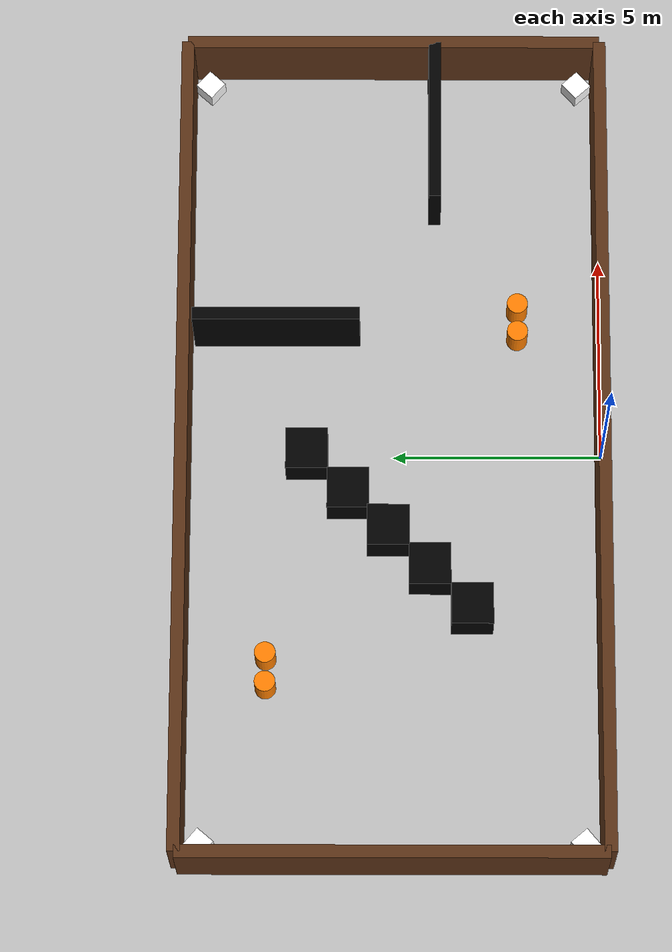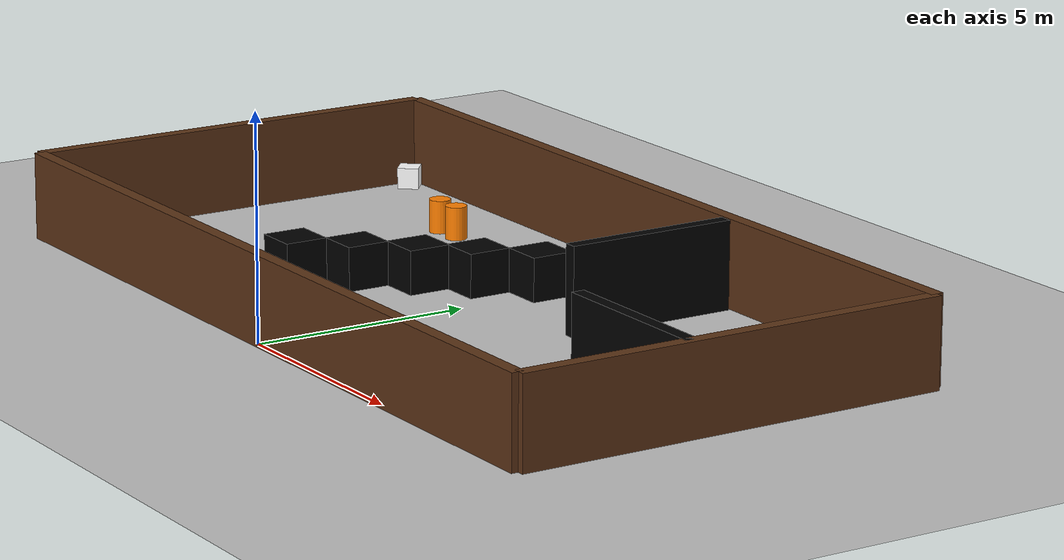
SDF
<sdf version='1.9'>
  <world name='empty_world'>
    <plugin filename="ignition-gazebo-physics-system" name="ignition::gazebo::systems::Physics"/>
    <plugin filename="ignition-gazebo-user-commands-system" name="ignition::gazebo::systems::UserCommands"/>
    <plugin filename="ignition-gazebo-scene-broadcaster-system" name="ignition::gazebo::systems::SceneBroadcaster"/>
    <plugin filename="ignition-gazebo-contact-system" name="ignition::gazebo::systems::Contact"/>
    <plugin filename="ignition-gazebo-sensors-system" name="ignition::gazebo::systems::Sensors">
      <render_engine>ogre2</render_engine>
    </plugin>
    <gravity>0 0 -9.8</gravity>
    <magnetic_field>6e-06 2.3e-05 -4.2e-05</magnetic_field>
    <atmosphere type='adiabatic'/>
    <physics type='ode'>
      <max_step_size>0.005</max_step_size>
      <real_time_factor>1</real_time_factor>
      <real_time_update_rate>1000</real_time_update_rate>
    </physics>
    <scene>
      <ambient>0.4 0.4 0.4 1</ambient>
      <background>0.7 0.7 0.7 1</background>
      <shadows>true</shadows>
    </scene>
    <model name='ground_plane'>
      <static>true</static>
      <link name='link'>
        <collision name='collision'>
          <geometry>
            <plane>
              <normal>0 0 1</normal>
              <size>100 100</size>
            </plane>
          </geometry>
          <surface>
            <friction>
              <ode/>
            </friction>
            <bounce/>
            <contact/>
          </surface>
        </collision>
        <visual name='visual'>
          <geometry>
            <plane>
              <normal>0 0 1</normal>
              <size>100 100</size>
            </plane>
          </geometry>
          <material>
            <ambient>0.0 0.0 0.8 1</ambient>
            <diffuse>0.75, 0.75, 0.75 1</diffuse>
            <specular>0.8 0.8 0.8 1</specular>
          </material>
        </visual>
        <pose>0 0 0 0 -0 0</pose>
        <inertial>
          <pose>0 0 0 0 -0 0</pose>
          <mass>1</mass>
          <inertia>
            <ixx>1</ixx>
            <ixy>0</ixy>
            <ixz>0</ixz>
            <iyy>1</iyy>
            <iyz>0</iyz>
            <izz>1</izz>
          </inertia>
        </inertial>
        <enable_wind>false</enable_wind>
      </link>
      <pose>0 0 0 0 -0 0</pose>
      <self_collide>false</self_collide>
    </model>

    <model name='wall_north'>
      <static>true</static>
      <pose>0 10 1 0 -0 0</pose>
      <link name='link'>
        <visual name='visual'>
          <geometry>
            <box>
              <size>20 0.3 2</size>
            </box>
          </geometry>
          <material>
            <ambient>0.0 0.0 0.8 1</ambient>
            <diffuse>0.36 0.2 0.09 1</diffuse>
            <specular>0.1 0.1 0.1 1</specular>
          </material>
        </visual>
        <collision name='collision'>
          <geometry>
            <box>
              <size>20 0.3 2</size>
            </box>
          </geometry>
          <surface>
            <friction>
              <ode/>
            </friction>
            <bounce/>
            <contact/>
          </surface>
        </collision>
        <pose>0 0 0 0 -0 0</pose>
        <inertial>
          <pose>0 0 0 0 -0 0</pose>
          <mass>1</mass>
          <inertia>
            <ixx>1</ixx>
            <ixy>0</ixy>
            <ixz>0</ixz>
            <iyy>1</iyy>
            <iyz>0</iyz>
            <izz>1</izz>
          </inertia>
        </inertial>
        <enable_wind>false</enable_wind>
      </link>
      <self_collide>false</self_collide>
    </model>

    <model name='wall_east'>
      <static>true</static>
      <pose>10 5 1 0 -0 0</pose>
      <link name='link'>
        <visual name='visual'>
          <geometry>
            <box>
              <size>0.3 10 2</size>
            </box>
          </geometry>
          <material>
            <ambient>0.0 0.0 0.8 1</ambient>
            <diffuse>0.36 0.2 0.09 1</diffuse>
            <specular>0.1 0.1 0.1 1</specular>
          </material>
        </visual>
        <collision name='collision'>
          <geometry>
            <box>
              <size>0.3 20 2</size>
            </box>
          </geometry>
          <surface>
            <friction>
              <ode/>
            </friction>
            <bounce/>
            <contact/>
          </surface>
        </collision>
        <pose>0 0 0 0 -0 0</pose>
        <inertial>
          <pose>0 0 0 0 -0 0</pose>
          <mass>1</mass>
          <inertia>
            <ixx>1</ixx>
            <ixy>0</ixy>
            <ixz>0</ixz>
            <iyy>1</iyy>
            <iyz>0</iyz>
            <izz>1</izz>
          </inertia>
        </inertial>
        <enable_wind>false</enable_wind>
      </link>
      <self_collide>false</self_collide>
    </model>
    <model name='wall_west'>
      <static>true</static>
      <pose>-10 5 1 0 -0 0</pose>
      <link name='link'>
        <visual name='visual'>
          <geometry>
            <box>
              <size>0.3 10 2</size>
            </box>
          </geometry>
          <material>
            <ambient>0.0 0.0 0.8 1</ambient>
            <diffuse>0.36 0.2 0.09 1</diffuse>
            <specular>0.1 0.1 0.1 1</specular>
          </material>
        </visual>
        <collision name='collision'>
          <geometry>
            <box>
              <size>0.3 20 2</size>
            </box>
          </geometry>
          <surface>
            <friction>
              <ode/>
            </friction>
            <bounce/>
            <contact/>
          </surface>
        </collision>
        <pose>0 0 0 0 -0 0</pose>
        <inertial>
          <pose>0 0 0 0 -0 0</pose>
          <mass>1</mass>
          <inertia>
            <ixx>1</ixx>
            <ixy>0</ixy>
            <ixz>0</ixz>
            <iyy>1</iyy>
            <iyz>0</iyz>
            <izz>1</izz>
          </inertia>
        </inertial>
        <enable_wind>false</enable_wind>
      </link>
      <self_collide>false</self_collide>
    </model>
    <model name='inner_wall_1'>
      <static>true</static>
      <pose>0 0 1 0 -0 0</pose>
      <link name='link'>
        <visual name='visual'>
          <geometry>
            <box>
              <size>20 0.3 2</size>
            </box>
          </geometry>
          <material>
            <ambient>0.0 0.0 0.8 1</ambient>
            <diffuse>0.36 0.2 0.09 1</diffuse>
            <specular>0.1 0.1 0.1 1</specular>
          </material>
        </visual>
        <collision name='collision'>
          <geometry>
            <box>
              <size>8 0.3 2</size>
            </box>
          </geometry>
          <surface>
            <friction>
              <ode/>
            </friction>
            <bounce/>
            <contact/>
          </surface>
        </collision>
        <pose>0 0 0 0 -0 0</pose>
        <inertial>
          <pose>0 0 0 0 -0 0</pose>
          <mass>1</mass>
          <inertia>
            <ixx>1</ixx>
            <ixy>0</ixy>
            <ixz>0</ixz>
            <iyy>1</iyy>
            <iyz>0</iyz>
            <izz>1</izz>
          </inertia>
        </inertial>
        <enable_wind>false</enable_wind>
      </link>
      <self_collide>false</self_collide>
    </model>

    <model name='cylinder'>
      <static>true</static>
      <pose>3 2 -0 0 -0 -0</pose>
      <link name='cylinder_link'>
        <inertial>
          <inertia>
            <ixx>0.16666</ixx>
            <ixy>0</ixy>
            <ixz>0</ixz>
            <iyy>0.16666</iyy>
            <iyz>0</iyz>
            <izz>0.16666</izz>
          </inertia>
          <mass>1</mass>
          <pose>0 0 0 0 -0 0</pose>
        </inertial>
        <collision name='cylinder_collision'>
          <geometry>
            <cylinder>
              <radius>0.25</radius>
              <length>1.5</length>
            </cylinder>
          </geometry>
          <surface>
            <friction>
              <ode/>
            </friction>
            <bounce/>
            <contact/>
          </surface>
        </collision>
        <visual name='cylinder_visual'>
          <geometry>
            <cylinder>
              <radius>0.25</radius>
              <length>1.5</length>
            </cylinder>
          </geometry>
          <material>
            <ambient>1.0 0.5 0.0 1</ambient>
            <diffuse>1.0 0.5 0.0 1</diffuse>
            <specular>0.2 0.2 0.2 1</specular>
          </material>
        </visual>
        <pose>0 0 0 0 -0 0</pose>
        <enable_wind>false</enable_wind>
      </link>
      <static>true</static>
      <self_collide>false</self_collide>
    </model>

    <model name='cylinder1'>
      <static>true</static>
      <pose>3.7 2 -0 0 0 0</pose>
      <link name='cylinder_link1'>
        <inertial>
          <inertia>
            <ixx>0.16666</ixx>
            <ixy>0</ixy>
            <ixz>0</ixz>
            <iyy>0.16666</iyy>
            <iyz>0</iyz>
            <izz>0.16666</izz>
          </inertia>
          <mass>1</mass>
          <pose>0 0 0 0 -0 0</pose>
        </inertial>
        <collision name='cylinder_collision'>
          <geometry>
            <cylinder>
              <radius>0.25</radius>
              <length>1.5</length>
            </cylinder>
          </geometry>
          <surface>
            <friction>
              <ode/>
            </friction>
            <bounce/>
            <contact/>
          </surface>
        </collision>
        <visual name='cylinder_visual'>
          <geometry>
            <cylinder>
              <radius>0.25</radius>
              <length>1.5</length>
            </cylinder>
          </geometry>
          <material>
            <ambient>1.0 0.5 0.0 1</ambient>
            <diffuse>1.0 0.5 0.0 1</diffuse>
            <specular>0.2 0.2 0.2 1</specular>
          </material>
        </visual>
        <pose>0 0 0 0 -0 0</pose>
        <enable_wind>false</enable_wind>
      </link>
      <static>true</static>
      <self_collide>false</self_collide>
    </model>

    <model name='cylinder2'>
      <static>true</static>
      <pose>-5 8 -0 0 0 0</pose>
      <link name='cylinder_link2'>
        <inertial>
          <inertia>
            <ixx>0.16666</ixx>
            <ixy>0</ixy>
            <ixz>0</ixz>
            <iyy>0.16666</iyy>
            <iyz>0</iyz>
            <izz>0.16666</izz>
          </inertia>
          <mass>1</mass>
          <pose>0 0 0 0 -0 0</pose>
        </inertial>
        <collision name='cylinder_collision'>
          <geometry>
            <cylinder>
              <radius>0.25</radius>
              <length>1.5</length>
            </cylinder>
          </geometry>
          <surface>
            <friction>
              <ode/>
            </friction>
            <bounce/>
            <contact/>
          </surface>
        </collision>
        <visual name='cylinder_visual'>
          <geometry>
            <cylinder>
              <radius>0.25</radius>
              <length>1.5</length>
            </cylinder>
          </geometry>
          <material>
            <ambient>1.0 0.5 0.0 1</ambient>
            <diffuse>1.0 0.5 0.0 1</diffuse>
            <specular>0.2 0.2 0.2 1</specular>
          </material>
        </visual>
        <pose>0 0 0 0 -0 0</pose>
        <enable_wind>false</enable_wind>
      </link>
      <static>true</static>
      <self_collide>false</self_collide>
    </model>

    <model name='cylinder3'>
      <static>true</static>
      <pose>-5.7 8 -0 0 0 0</pose>
      <link name='cylinder_link3'>
        <inertial>
          <inertia>
            <ixx>0.16666</ixx>
            <ixy>0</ixy>
            <ixz>0</ixz>
            <iyy>0.16666</iyy>
            <iyz>0</iyz>
            <izz>0.16666</izz>
          </inertia>
          <mass>1</mass>
          <pose>0 0 0 0 -0 0</pose>
        </inertial>
        <collision name='cylinder_collision'>
          <geometry>
            <cylinder>
              <radius>0.25</radius>
              <length>1.5</length>
            </cylinder>
          </geometry>
          <surface>
            <friction>
              <ode/>
            </friction>
            <bounce/>
            <contact/>
          </surface>
        </collision>
        <visual name='cylinder_visual'>
          <geometry>
            <cylinder>
              <radius>0.25</radius>
              <length>1.5</length>
            </cylinder>
          </geometry>
          <material>
            <ambient>1.0 0.5 0.0 1</ambient>
            <diffuse>1.0 0.5 0.0 1</diffuse>
            <specular>0.2 0.2 0.2 1</specular>
          </material>
        </visual>
        <pose>0 0 0 0 -0 0</pose>
        <enable_wind>false</enable_wind>
      </link>
      <static>true</static>
      <self_collide>false</self_collide>
    </model>

    <model name='inner_wall_2'>
      <static>true</static>
      <pose>3 7.8 1 0 -0 0</pose>
      <link name='link'>
        <visual name='visual'>
          <geometry>
            <box>
              <size>0.3 4 2</size>
            </box>
          </geometry>
          <material>
            <ambient>0.0 0.0 0.8 1</ambient>
            <diffuse>0.0 0.0 0.0 1</diffuse>
            <specular>0.1 0.1 0.1 1</specular>
          </material>
        </visual>
        <collision name='collision'>
          <geometry>
            <box>
              <size>0.3 4 2</size>
            </box>
          </geometry>
          <surface>
            <friction>
              <ode/>
            </friction>
            <bounce/>
            <contact/>
          </surface>
        </collision>
        <pose>0 0 0 0 -0 0</pose>
        <inertial>
          <pose>0 0 0 0 -0 0</pose>
          <mass>1</mass>
          <inertia>
            <ixx>1</ixx>
            <ixy>0</ixy>
            <ixz>0</ixz>
            <iyy>1</iyy>
            <iyz>0</iyz>
            <izz>1</izz>
          </inertia>
        </inertial>
        <enable_wind>false</enable_wind>
      </link>
      <self_collide>false</self_collide>
    </model>

    <model name='inner_wall_3'>
      <static>true</static>
      <pose>8 4 1 0 0 1.57</pose>
      <link name='link'>
        <visual name='visual'>
          <geometry>
            <box>
              <size>0.3 4 2</size>
            </box>
          </geometry>
          <material>
            <ambient>0.0 0.0 0.8 1</ambient>
            <diffuse>0.0 0.0 0.0 1</diffuse>
            <specular>0.1 0.1 0.1 1</specular>
          </material>
        </visual>
        <collision name='collision'>
          <geometry>
            <box>
              <size>0.3 4 2</size>
            </box>
          </geometry>
          <surface>
            <friction>
              <ode/>
            </friction>
            <bounce/>
            <contact/>
          </surface>
        </collision>
        <pose>0 0 0 0 -0 0</pose>
        <inertial>
          <pose>0 0 0 0 -0 0</pose>
          <mass>1</mass>
          <inertia>
            <ixx>1</ixx>
            <ixy>0</ixy>
            <ixz>0</ixz>
            <iyy>1</iyy>
            <iyz>0</iyz>
            <izz>1</izz>
          </inertia>
        </inertial>
        <enable_wind>false</enable_wind>
      </link>
      <self_collide>false</self_collide>
    </model>

<!-- SEZIONE ARUCO BOX-->

    <model name='aruco_box'>
      <pose>-9.5 9.5 0.25 0 0 -0.7</pose>
      <link name='box_link'>
        <inertial>
          <mass>10</mass>
          <inertia>
            <ixx>1.6599999999999999</ixx>
            <ixy>0</ixy>
            <ixz>0</ixz>
            <iyy>1.6599999999999999</iyy>
            <iyz>0</iyz>
            <izz>1.6599999999999999</izz>
          </inertia>
          <pose>0 0 0 0 -0 0</pose>
        </inertial>
        <visual name='visual'>
          <geometry>
            <box>
              <size>0.4 0.4 0.4</size>
            </box>
          </geometry>
          <material>
            <ambient>1 1 1 1</ambient>
            <diffuse>1 1 1 1</diffuse>
          </material>
        </visual>
        <collision name='collision'>
          <geometry>
            <box>
              <size>0.4 0.4 0.4</size>
            </box>
          </geometry>
          <surface>
            <friction>
              <ode/>
            </friction>
            <bounce/>
            <contact/>
          </surface>
        </collision>
        <pose>0 0 0 0 -0 0</pose>
        <enable_wind>false</enable_wind>
      </link>

      <include>
        <uri>model://aruco_marker_0</uri>
        <name>marker_0</name>
        <pose>0 0 0 0 0 0</pose>
      </include>
      <joint name='joint_0' type='fixed'>
        <parent>box_link</parent>
        <child>marker_0::link</child>
        <pose>0 0 0 0 0 -0</pose>
      </joint>

      <static>true</static>
      <self_collide>false</self_collide>
    </model>

    <model name='aruco_box_1'>
      <pose>9.5 9.5 0.25 0 0 -2.3</pose>
      <link name='box_link'>
        <inertial>
          <mass>10</mass>
          <inertia>
            <ixx>1.6599999999999999</ixx>
            <ixy>0</ixy>
            <ixz>0</ixz>
            <iyy>1.6599999999999999</iyy>
            <iyz>0</iyz>
            <izz>1.6599999999999999</izz>
          </inertia>
          <pose>0 0 0 0 -0 0</pose>
        </inertial>
        <visual name='visual'>
          <geometry>
            <box>
              <size>0.4 0.4 0.4</size>
            </box>
          </geometry>
          <material>
            <ambient>1 1 1 1</ambient>
            <diffuse>1 1 1 1</diffuse>
          </material>
        </visual>
        <collision name='collision'>
          <geometry>
            <box>
              <size>0.4 0.4 0.4</size>
            </box>
          </geometry>
          <surface>
            <friction>
              <ode/>
            </friction>
            <bounce/>
            <contact/>
          </surface>
        </collision>
        <pose>0 0 0 0 -0 0</pose>
        <enable_wind>false</enable_wind>
      </link>

      <include>
        <uri>model://aruco_marker_1</uri>
        <name>marker_1</name>
        <pose>0 0 0 0 0 0</pose>
      </include>
      <joint name='joint_1' type='fixed'>
        <parent>box_link</parent>
        <child>marker_1::link</child>
        <pose>0 0 0 0 0 -0</pose>
      </joint>

      <static>true</static>
      <self_collide>false</self_collide>
    </model>

    <model name='aruco_box_2'>
      <pose>9.5 0.5 0.25 0 0 2.3</pose>
      <link name='box_link'>
        <inertial>
          <mass>10</mass>
          <inertia>
            <ixx>1.6599999999999999</ixx>
            <ixy>0</ixy>
            <ixz>0</ixz>
            <iyy>1.6599999999999999</iyy>
            <iyz>0</iyz>
            <izz>1.6599999999999999</izz>
          </inertia>
          <pose>0 0 0 0 -0 0</pose>
        </inertial>
        <visual name='visual'>
          <geometry>
            <box>
              <size>0.4 0.4 0.4</size>
            </box>
          </geometry>
          <material>
            <ambient>1 1 1 1</ambient>
            <diffuse>1 1 1 1</diffuse>
          </material>
        </visual>
        <collision name='collision'>
          <geometry>
            <box>
              <size>0.4 0.4 0.4</size>
            </box>
          </geometry>
          <surface>
            <friction>
              <ode/>
            </friction>
            <bounce/>
            <contact/>
          </surface>
        </collision>
        <pose>0 0 0 0 -0 0</pose>
        <enable_wind>false</enable_wind>
      </link>
      <include>
        <uri>model://aruco_marker_2</uri>
        <name>marker_2</name>
        <pose>0 0 0 0 0 0</pose>
      </include>
      <joint name='joint_2' type='fixed'>
        <parent>box_link</parent>
        <child>marker_2::link</child>
        <pose>0 0 0 0 0 -0</pose>
      </joint>
      <static>true</static>
      <self_collide>false</self_collide>
    </model>

    <model name='aruco_box_3'>
      <pose>-9.5 0.5 0.25 -0 0 0.7</pose>
      <link name='box_link'>
        <inertial>
          <mass>10</mass>
          <inertia>
            <ixx>1.6599999999999999</ixx>
            <ixy>0</ixy>
            <ixz>0</ixz>
            <iyy>1.6599999999999999</iyy>
            <iyz>0</iyz>
            <izz>1.6599999999999999</izz>
          </inertia>
          <pose>0 0 0 0 -0 0</pose>
        </inertial>
        <visual name='visual'>
          <geometry>
            <box>
              <size>0.4 0.4 0.4</size>
            </box>
          </geometry>
          <material>
            <ambient>1 1 1 1</ambient>
            <diffuse>1 1 1 1</diffuse>
          </material>
        </visual>
        <collision name='collision'>
          <geometry>
            <box>
              <size>0.4 0.4 0.4</size>
            </box>
          </geometry>
          <surface>
            <friction>
              <ode/>
            </friction>
            <bounce/>
            <contact/>
          </surface>
        </collision>
        <pose>0 0 0 0 -0 0</pose>
        <enable_wind>false</enable_wind>
      </link>
      <include>
        <uri>model://aruco_marker_3</uri>
        <name>marker_3</name>
        <pose>0 0 0 0 0 0</pose>
      </include>
      <joint name='joint_3' type='fixed'>
        <parent>box_link</parent>
        <child>marker_3::link</child>
        <pose>0 0 0 0 0 -0</pose>
      </joint>
      <static>true</static>
      <self_collide>false</self_collide>
    </model>

    <model name='box'>
      <static>true</static>
      <pose>-0.04 7.06 0.5 0 0 -0</pose>
      <link name='box_link'>
        <inertial>
          <inertia>
            <ixx>0.16666</ixx>
            <ixy>0</ixy>
            <ixz>0</ixz>
            <iyy>0.16666</iyy>
            <iyz>0</iyz>
            <izz>0.16666</izz>
          </inertia>
          <mass>1</mass>
          <pose>0 0 0 0 -0 0</pose>
        </inertial>
        <collision name='box_collision'>
          <geometry>
            <box>
              <size>1 1 1</size>
            </box>
          </geometry>
          <surface>
            <friction>
              <ode/>
            </friction>
            <bounce/>
            <contact/>
          </surface>
        </collision>
        <visual name='box_visual'>
          <geometry>
            <box>
              <size>1 1 1</size>
            </box>
          </geometry>
          <material>
           <ambient>0.0 0.0 0.8 1</ambient>
            <diffuse>0.0 0.0 0.0 1</diffuse>
            <specular>0.1 0.1 0.1 1</specular>
          </material>
        </visual>
        <pose>0 0 0 0 -0 0</pose>
        <enable_wind>false</enable_wind>
      </link>
      <static>true</static>
      <self_collide>false</self_collide>
    </model>

    <model name='box_0'>
      <static>true</static>
      <pose>-1.02 6.07 0.5 0 0 -0</pose>
      <link name='box_link'>
        <inertial>
          <inertia>
            <ixx>0.16666</ixx>
            <ixy>0</ixy>
            <ixz>0</ixz>
            <iyy>0.16666</iyy>
            <iyz>0</iyz>
            <izz>0.16666</izz>
          </inertia>
          <mass>1</mass>
          <pose>0 0 0 0 -0 0</pose>
        </inertial>
        <collision name='box_collision'>
          <geometry>
            <box>
              <size>1 1 1</size>
            </box>
          </geometry>
          <surface>
            <friction>
              <ode/>
            </friction>
            <bounce/>
            <contact/>
          </surface>
        </collision>
        <visual name='box_visual'>
          <geometry>
            <box>
              <size>1 1 1</size>
            </box>
          </geometry>
          <material>
            <ambient>0.0 0.0 0.8 1</ambient>
            <diffuse>0.0 0.0 0.0 1</diffuse>
            <specular>0.1 0.1 0.1 1</specular>
          </material>
        </visual>
        <pose>0 0 0 0 -0 0</pose>
        <enable_wind>false</enable_wind>
      </link>
      <static>true</static>
      <self_collide>false</self_collide>
    </model>
    <model name='box_1'>
      <static>true</static>
      <pose>-1.94 5.11 0.5 0 0 -0</pose>
      <link name='box_link'>
        <inertial>
          <inertia>
            <ixx>0.16666</ixx>
            <ixy>0</ixy>
            <ixz>0</ixz>
            <iyy>0.16666</iyy>
            <iyz>0</iyz>
            <izz>0.16666</izz>
          </inertia>
          <mass>1</mass>
          <pose>0 0 0 0 -0 0</pose>
        </inertial>
        <collision name='box_collision'>
          <geometry>
            <box>
              <size>1 1 1</size>
            </box>
          </geometry>
          <surface>
            <friction>
              <ode/>
            </friction>
            <bounce/>
            <contact/>
          </surface>
        </collision>
        <visual name='box_visual'>
          <geometry>
            <box>
              <size>1 1 1</size>
            </box>
          </geometry>
          <material>
            <ambient>0.0 0.0 0.8 1</ambient>
            <diffuse>0.0 0.0 0.0 1</diffuse>
            <specular>0.1 0.1 0.1 1</specular>
          </material>
        </visual>
        <pose>0 0 0 0 -0 0</pose>
        <enable_wind>false</enable_wind>
      </link>
      <static>true</static>
      <self_collide>false</self_collide>
    </model>
    <model name='box_2'>
      <static>true</static>
      <pose>-2.89 4.12 0.5 0 -0 0</pose>
      <link name='box_link'>
        <inertial>
          <inertia>
            <ixx>0.16666</ixx>
            <ixy>0</ixy>
            <ixz>0</ixz>
            <iyy>0.16666</iyy>
            <iyz>0</iyz>
            <izz>0.16666</izz>
          </inertia>
          <mass>1</mass>
          <pose>0 0 0 0 -0 0</pose>
        </inertial>
        <collision name='box_collision'>
          <geometry>
            <box>
              <size>1 1 1</size>
            </box>
          </geometry>
          <surface>
            <friction>
              <ode/>
            </friction>
            <bounce/>
            <contact/>
          </surface>
        </collision>
        <visual name='box_visual'>
          <geometry>
            <box>
              <size>1 1 1</size>
            </box>
          </geometry>
          <material>
            <ambient>0.0 0.0 0.8 1</ambient>
            <diffuse>0.0 0.0 0.0 1</diffuse>
            <specular>0.1 0.1 0.1 1</specular>
          </material>
        </visual>
        <pose>0 0 0 0 -0 0</pose>
        <enable_wind>false</enable_wind>
      </link>
      <static>true</static>
      <self_collide>false</self_collide>
    </model>
    <model name='box_3'>
      <static>true</static>
      <pose>-3.86 3.12 0.5 0 0 -0</pose>
      <link name='box_link'>
        <inertial>
          <inertia>
            <ixx>0.16666</ixx>
            <ixy>0</ixy>
            <ixz>0</ixz>
            <iyy>0.16666</iyy>
            <iyz>0</iyz>
            <izz>0.16666</izz>
          </inertia>
          <mass>1</mass>
          <pose>0 0 0 0 -0 0</pose>
        </inertial>
        <collision name='box_collision'>
          <geometry>
            <box>
              <size>1 1 1</size>
            </box>
          </geometry>
          <surface>
            <friction>
              <ode/>
            </friction>
            <bounce/>
            <contact/>
          </surface>
        </collision>
        <visual name='box_visual'>
          <geometry>
            <box>
              <size>1 1 1</size>
            </box>
          </geometry>
          <material>
            <ambient>0.0 0.0 0.8 1</ambient>
            <diffuse>0.0 0.0 0.0 1</diffuse>
            <specular>0.1 0.1 0.1 1</specular>
          </material>
        </visual>
        <pose>0 0 0 0 -0 0</pose>
        <enable_wind>false</enable_wind>
      </link>
      <static>true</static>
      <self_collide>false</self_collide>
    </model>
    <light name='sun' type='directional'>
      <pose>0 0 10 0 -0 0</pose>
      <cast_shadows>false</cast_shadows>
      <intensity>1</intensity>
      <direction>-0.5 0.1 -0.9</direction>
      <diffuse>0.8 0.8 0.8 1</diffuse>
      <specular>0.2 0.2 0.2 1</specular>
      <attenuation>
        <range>10</range>
        <linear>1</linear>
        <constant>1</constant>
        <quadratic>0</quadratic>
      </attenuation>
      <spot>
        <inner_angle>0</inner_angle>
        <outer_angle>0</outer_angle>
        <falloff>0</falloff>
      </spot>
    </light>
  </world>
</sdf>

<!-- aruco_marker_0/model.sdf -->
<sdf version="1.6">
  <model name="aruco_marker_0">
    <static>true</static>
    <link name="link">
      <visual name="visual">
        <geometry>
          <box>
            <size>0.5 0.5 0.5</size> </box>
        </geometry>
        <material>
          <diffuse>1.0 1.0 1.0 1.0</diffuse> <pbr>
            <metal>
              <albedo_map>../textures/marker_0.png</albedo_map>
            </metal>
          </pbr>
        </material>
      </visual>
      <collision name="collision">
        <geometry>
          <box>
            <size>0.5 0.5 0.5</size>
          </box>
        </geometry>
      </collision>
    </link>
  </model>
</sdf>

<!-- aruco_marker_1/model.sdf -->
<sdf version="1.6">
  <model name="aruco_marker_1">
    <static>true</static>
    <link name="link">
      <visual name="visual">
        <geometry>
          <box>
            <size>0.5 0.5 0.5</size> </box>
        </geometry>
        <material>
          <ambient>1.0 1.0 1.0 1.0</ambient>
          <diffuse>1.0 1.0 1.0 1.0</diffuse> <pbr>
            <metal>
              <albedo_map>../textures/marker_1.png</albedo_map>
            </metal>
          </pbr>
        </material>
      </visual>
      <collision name="collision">
        <geometry>
          <box>
            <size>0.5 0.5 0.5</size>
          </box>
        </geometry>
      </collision>
    </link>
  </model>
</sdf>

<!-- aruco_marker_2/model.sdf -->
<sdf version="1.6">
  <model name="aruco_marker_2">
    <static>true</static>
    <link name="link">
      <visual name="visual">
        <geometry>
          <box>
            <size>0.5 0.5 0.5</size> </box>
        </geometry>
        <material>
          <diffuse>1.0 1.0 1.0 1.0</diffuse> <pbr>
            <metal>
              <albedo_map>../textures/marker_2.png</albedo_map>
            </metal>
          </pbr>
        </material>
      </visual>
      <collision name="collision">
        <geometry>
          <box>
            <size>0.5 0.5 0.5</size>
          </box>
        </geometry>
      </collision>
    </link>
  </model>
</sdf>

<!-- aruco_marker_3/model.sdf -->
<sdf version="1.6">
  <model name="aruco_marker_3">
    <static>true</static>
    <link name="link">
      <visual name="visual">
        <geometry>
          <box>
            <size>0.5 0.5 0.5</size> </box>
        </geometry>
        <material>
          <diffuse>1.0 1.0 1.0 1.0</diffuse> <pbr>
            <metal>
              <albedo_map>../textures/marker_3.png</albedo_map>
            </metal>
          </pbr>
        </material>
      </visual>
      <collision name="collision">
        <geometry>
          <box>
            <size>0.5 0.5 0.5</size>
          </box>
        </geometry>
      </collision>
    </link>
  </model>
</sdf>
